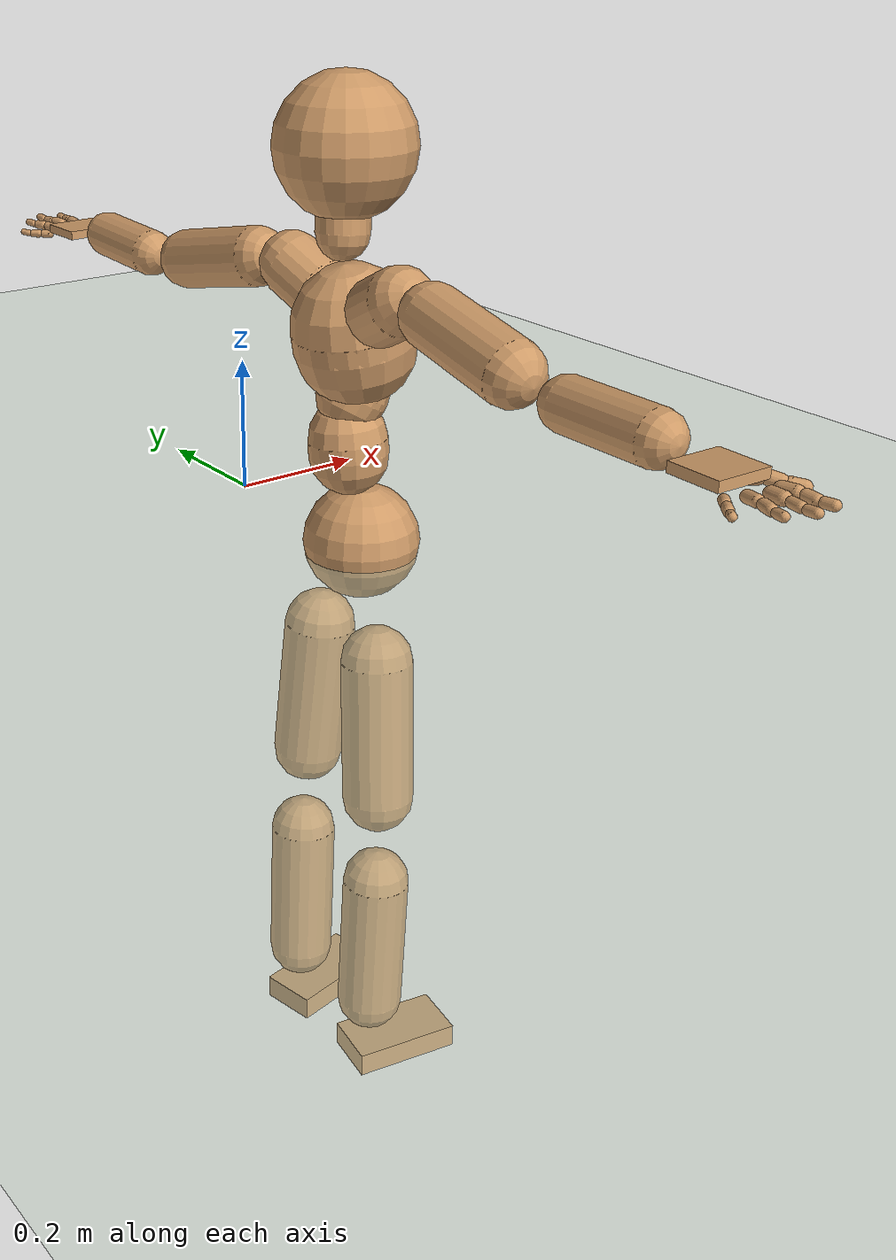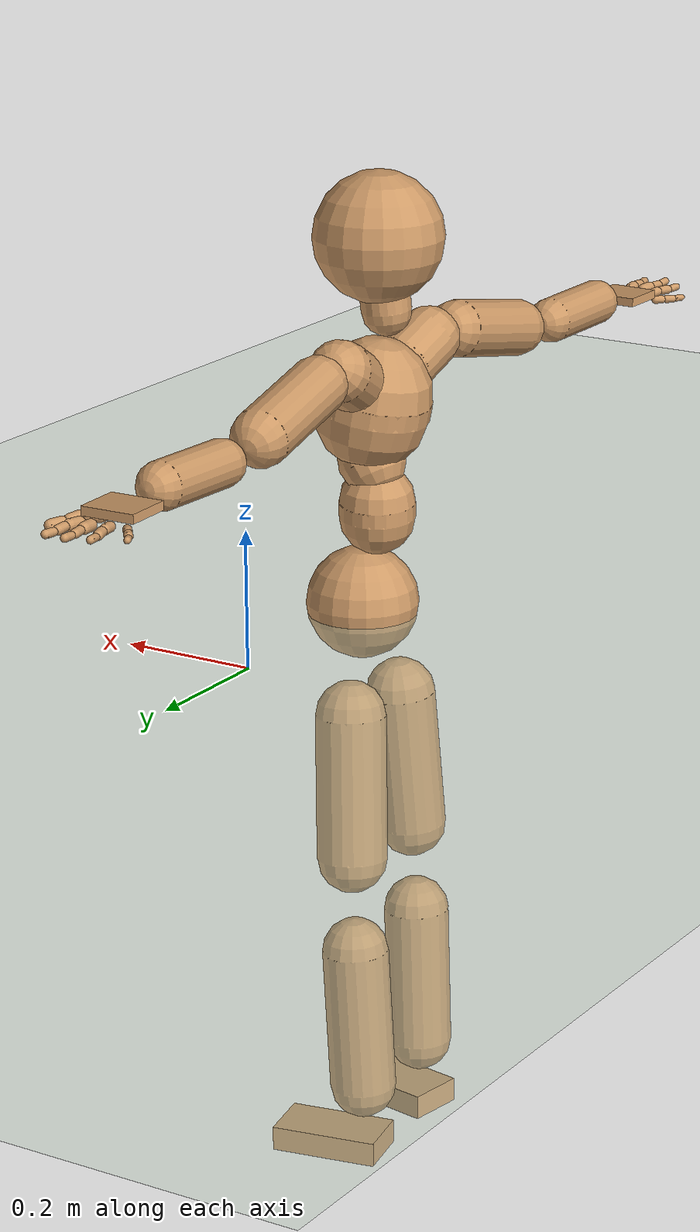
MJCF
<mujoco model="humanoid">
  <compiler coordinate="local" angle="radian"/>
  <default>
    <joint damping="0.0" armature="0.01" stiffness="0.0" limited="true"/>
    <geom conaffinity="1" condim="3" contype="7" margin="0.001" rgba="0.8 0.6 .4 1"/>
  </default>
  <asset>
    <texture type="skybox" builtin="gradient" rgb1=".4 .5 .6" rgb2="0 0 0" width="100" height="100"/>
    <texture builtin="flat" height="1278" mark="cross" markrgb="1 1 1" name="texgeom" random="0.01" rgb1="0.8 0.6 0.4" rgb2="0.8 0.6 0.4" type="cube" width="127"/>
    <texture builtin="checker" height="100" name="texplane" rgb1="0 0 0" rgb2="0.8 0.8 0.8" type="2d" width="100"/>
    <material name="MatPlane" reflectance="0.5" shininess="1" specular="1" texrepeat="60 60" texture="texplane"/>
    <material name="geom" texture="texgeom" texuniform="true"/>
  </asset>
  <worldbody>
    <light cutoff="100" diffuse="1 1 1" dir="-0 0 -1.3" directional="true" exponent="1" pos="0 0 1.3" specular=".1 .1 .1"/>
    <geom conaffinity="1" condim="3" name="floor" pos="0 0 0" rgba="0.8 0.9 0.8 1" size="100 100 .2" type="plane" material="MatPlane"/>
    <body name="Pelvis" pos="0.0003 -0.3 0.0145">
      <freejoint name="Pelvis"/>
      <geom type="sphere" contype="1" conaffinity="1" density="500" size="0.0826" pos="0.0000 0.0000 0.0000" name="Pelvis"/>
      <body name="L_Hip" pos="-0.0183 0.0637 -0.0798">
        <joint name="L_Hip_x" type="hinge" pos="0 0 0" axis="1 0 0" stiffness="800" damping="80" armature="0.02" range="-180.0000 180.0000"/>
        <joint name="L_Hip_y" type="hinge" pos="0 0 0" axis="0 1 0" stiffness="800" damping="80" armature="0.02" range="-180.0000 180.0000"/>
        <joint name="L_Hip_z" type="hinge" pos="0 0 0" axis="0 0 1" stiffness="800" damping="80" armature="0.02" range="-180.0000 180.0000"/>
        <geom type="capsule" contype="1" conaffinity="1" density="500" fromto="-0.0039 0.0054 -0.0715 -0.0154 0.0216 -0.2860" size="0.0517" name="L_Hip"/>
        <body name="L_Knee" pos="-0.0193 0.027 -0.3575">
          <joint name="L_Knee_x" type="hinge" pos="0 0 0" axis="1 0 0" stiffness="800" damping="80" armature="0.02" range="-180.0000 180.0000"/>
          <joint name="L_Knee_y" type="hinge" pos="0 0 0" axis="0 1 0" stiffness="800" damping="80" armature="0.02" range="-180.0000 180.0000"/>
          <joint name="L_Knee_z" type="hinge" pos="0 0 0" axis="0 0 1" stiffness="800" damping="80" armature="0.02" range="-180.0000 180.0000"/>
          <geom type="capsule" contype="1" conaffinity="1" density="500" fromto="-0.0032 -0.0015 -0.0728 -0.0130 -0.0061 -0.2914" size="0.0489" name="L_Knee"/>
          <body name="L_Ankle" pos="-0.0162 -0.0077 -0.3642">
            <joint name="L_Ankle_x" type="hinge" pos="0 0 0" axis="1 0 0" stiffness="800" damping="80" armature="0.02" range="-180.0000 180.0000"/>
            <joint name="L_Ankle_y" type="hinge" pos="0 0 0" axis="0 1 0" stiffness="800" damping="80" armature="0.02" range="-180.0000 180.0000"/>
            <joint name="L_Ankle_z" type="hinge" pos="0 0 0" axis="0 0 1" stiffness="800" damping="80" armature="0.02" range="-180.0000 180.0000"/>
            <geom type="box" contype="1" conaffinity="1" density="500" pos="0.0514 0.0099 -0.0209" size="0.0806 0.0431 0.0184" quat="0.9954 0.0000 0.0000 0.0954" name="L_Ankle"/>
            <body name="L_Toe" pos="0.1029 0.0199 -0.0417">
              <joint name="L_Toe_x" type="hinge" pos="0 0 0" axis="1 0 0" stiffness="500" damping="50" armature="0.02" range="-180.0000 180.0000"/>
              <joint name="L_Toe_y" type="hinge" pos="0 0 0" axis="0 1 0" stiffness="500" damping="50" armature="0.02" range="-180.0000 180.0000"/>
              <joint name="L_Toe_z" type="hinge" pos="0 0 0" axis="0 0 1" stiffness="500" damping="50" armature="0.02" range="-180.0000 180.0000"/>
              <geom type="box" contype="1" conaffinity="1" density="500" pos="0.0000 0.0000 0.0218" size="0.0009 0.0021 0.001" quat="0.9947 0.0000 0.0000 0.1027" name="L_Toe"/>
            </body>
          </body>
        </body>
      </body>
      <body name="R_Hip" pos="-0.0196 -0.0627 -0.0863">
        <joint name="R_Hip_x" type="hinge" pos="0 0 0" axis="1 0 0" stiffness="800" damping="80" armature="0.02" range="-180.0000 180.0000"/>
        <joint name="R_Hip_y" type="hinge" pos="0 0 0" axis="0 1 0" stiffness="800" damping="80" armature="0.02" range="-180.0000 180.0000"/>
        <joint name="R_Hip_z" type="hinge" pos="0 0 0" axis="0 0 1" stiffness="800" damping="80" armature="0.02" range="-180.0000 180.0000"/>
        <geom type="capsule" contype="1" conaffinity="1" density="500" fromto="-0.0028 -0.0061 -0.0706 -0.0111 -0.0244 -0.2824" size="0.0516" name="R_Hip"/>
        <body name="R_Knee" pos="-0.0139 -0.0305 -0.353">
          <joint name="R_Knee_x" type="hinge" pos="0 0 0" axis="1 0 0" stiffness="800" damping="80" armature="0.02" range="-180.0000 180.0000"/>
          <joint name="R_Knee_y" type="hinge" pos="0 0 0" axis="0 1 0" stiffness="800" damping="80" armature="0.02" range="-180.0000 180.0000"/>
          <joint name="R_Knee_z" type="hinge" pos="0 0 0" axis="0 0 1" stiffness="800" damping="80" armature="0.02" range="-180.0000 180.0000"/>
          <geom type="capsule" contype="1" conaffinity="1" density="500" fromto="-0.0024 0.0007 -0.0712 -0.0096 0.0028 -0.2849" size="0.0489" name="R_Knee"/>
          <body name="R_Ankle" pos="-0.012 0.0036 -0.3562">
            <joint name="R_Ankle_x" type="hinge" pos="0 0 0" axis="1 0 0" stiffness="800" damping="80" armature="0.02" range="-180.0000 180.0000"/>
            <joint name="R_Ankle_y" type="hinge" pos="0 0 0" axis="0 1 0" stiffness="800" damping="80" armature="0.02" range="-180.0000 180.0000"/>
            <joint name="R_Ankle_z" type="hinge" pos="0 0 0" axis="0 0 1" stiffness="800" damping="80" armature="0.02" range="-180.0000 180.0000"/>
            <geom type="box" contype="1" conaffinity="1" density="500" pos="0.0483 -0.0081 -0.0227" size="0.0806 0.0431 0.0184" quat="0.9965 0.0000 0.0000 -0.0831" name="R_Ankle"/>
            <body name="R_Toe" pos="0.0965 -0.0162 -0.0454">
              <joint name="R_Toe_x" type="hinge" pos="0 0 0" axis="1 0 0" stiffness="500" damping="50" armature="0.02" range="-180.0000 180.0000"/>
              <joint name="R_Toe_y" type="hinge" pos="0 0 0" axis="0 1 0" stiffness="500" damping="50" armature="0.02" range="-180.0000 180.0000"/>
              <joint name="R_Toe_z" type="hinge" pos="0 0 0" axis="0 0 1" stiffness="500" damping="50" armature="0.02" range="-180.0000 180.0000"/>
              <geom type="box" contype="1" conaffinity="1" density="500" pos="0.0000 0.0000 0.0236" size="0.0009 0.0021 0.001" quat="0.9974 0.0000 0.0000 -0.0715" name="R_Toe"/>
            </body>
          </body>
        </body>
      </body>
      <body name="Torso" pos="-0.022 -0.0047 0.0898">
        <joint name="Torso_x" type="hinge" pos="0 0 0" axis="1 0 0" stiffness="1000" damping="100" armature="0.02" range="-180.0000 180.0000"/>
        <joint name="Torso_y" type="hinge" pos="0 0 0" axis="0 1 0" stiffness="1000" damping="100" armature="0.02" range="-180.0000 180.0000"/>
        <joint name="Torso_z" type="hinge" pos="0 0 0" axis="0 0 1" stiffness="1000" damping="100" armature="0.02" range="-180.0000 180.0000"/>
        <geom type="capsule" contype="1" conaffinity="1" density="500" fromto="-0.0031 0.0047 0.0648 -0.0021 0.0031 0.0432" size="0.0556" name="Torso"/>
        <body name="Spine" pos="-0.0051 0.0079 0.108">
          <joint name="Spine_x" type="hinge" pos="0 0 0" axis="1 0 0" stiffness="1000" damping="100" armature="0.02" range="-180.0000 180.0000"/>
          <joint name="Spine_y" type="hinge" pos="0 0 0" axis="0 1 0" stiffness="1000" damping="100" armature="0.02" range="-180.0000 180.0000"/>
          <joint name="Spine_z" type="hinge" pos="0 0 0" axis="0 0 1" stiffness="1000" damping="100" armature="0.02" range="-180.0000 180.0000"/>
          <geom type="capsule" contype="1" conaffinity="1" density="500" fromto="0.0134 -0.0024 0.0235 0.0090 -0.0016 0.0157" size="0.049" name="Spine"/>
          <body name="Chest" pos="0.0224 -0.004 0.0392">
            <joint name="Chest_x" type="hinge" pos="0 0 0" axis="1 0 0" stiffness="1000" damping="100" armature="0.02" range="-180.0000 180.0000"/>
            <joint name="Chest_y" type="hinge" pos="0 0 0" axis="0 1 0" stiffness="1000" damping="100" armature="0.02" range="-180.0000 180.0000"/>
            <joint name="Chest_z" type="hinge" pos="0 0 0" axis="0 0 1" stiffness="1000" damping="100" armature="0.02" range="-180.0000 180.0000"/>
            <geom type="capsule" contype="1" conaffinity="1" density="500" fromto="-0.0148 -0.0015 0.0745 -0.0099 -0.0010 0.0497" size="0.0843" name="Chest"/>
            <body name="Neck" pos="-0.0359 -0.0053 0.1722">
              <joint name="Neck_x" type="hinge" pos="0 0 0" axis="1 0 0" stiffness="500" damping="50" armature="0.02" range="-180.0000 180.0000"/>
              <joint name="Neck_y" type="hinge" pos="0 0 0" axis="0 1 0" stiffness="500" damping="50" armature="0.02" range="-180.0000 180.0000"/>
              <joint name="Neck_z" type="hinge" pos="0 0 0" axis="0 0 1" stiffness="500" damping="50" armature="0.02" range="-180.0000 180.0000"/>
              <geom type="capsule" contype="1" conaffinity="1" density="500" fromto="0.0021 0.0017 0.0266 0.0085 0.0067 0.1063" size="0.0361" name="Neck"/>
              <body name="Head" pos="0.0106 0.0084 0.1329">
                <joint name="Head_x" type="hinge" pos="0 0 0" axis="1 0 0" stiffness="500" damping="50" armature="0.02" range="-180.0000 180.0000"/>
                <joint name="Head_y" type="hinge" pos="0 0 0" axis="0 1 0" stiffness="500" damping="50" armature="0.02" range="-180.0000 180.0000"/>
                <joint name="Head_z" type="hinge" pos="0 0 0" axis="0 0 1" stiffness="500" damping="50" armature="0.02" range="-180.0000 180.0000"/>
                <geom type="sphere" contype="1" conaffinity="1" density="500" size="0.0943" pos="0.0000 0.0000 0.0000" name="Head"/>
              </body>
            </body>
            <body name="L_Thorax" pos="-0.0165 0.047 0.1019">
              <joint name="L_Thorax_x" type="hinge" pos="0 0 0" axis="1 0 0" stiffness="500" damping="50" armature="0.02" range="-180.0000 180.0000"/>
              <joint name="L_Thorax_y" type="hinge" pos="0 0 0" axis="0 1 0" stiffness="500" damping="50" armature="0.02" range="-180.0000 180.0000"/>
              <joint name="L_Thorax_z" type="hinge" pos="0 0 0" axis="0 0 1" stiffness="500" damping="50" armature="0.02" range="-180.0000 180.0000"/>
              <geom type="capsule" contype="1" conaffinity="1" density="500" fromto="-0.0037 0.0168 0.0086 -0.0146 0.0671 0.0343" size="0.0452" name="L_Thorax"/>
              <body name="L_Shoulder" pos="-0.0183 0.0838 0.0429">
                <joint name="L_Shoulder_x" type="hinge" pos="0 0 0" axis="1 0 0" stiffness="500" damping="50" armature="0.02" range="-180.0000 180.0000"/>
                <joint name="L_Shoulder_y" type="hinge" pos="0 0 0" axis="0 1 0" stiffness="500" damping="50" armature="0.02" range="-180.0000 180.0000"/>
                <joint name="L_Shoulder_z" type="hinge" pos="0 0 0" axis="0 0 1" stiffness="500" damping="50" armature="0.02" range="-180.0000 180.0000"/>
                <geom type="capsule" contype="1" conaffinity="1" density="500" fromto="-0.0047 0.0545 -0.0110 -0.0187 0.2179 -0.0441" size="0.0419" name="L_Shoulder"/>
                <body name="L_Elbow" pos="-0.0234 0.2723 -0.0551">
                  <joint name="L_Elbow_x" type="hinge" pos="0 0 0" axis="1 0 0" stiffness="500" damping="50" armature="0.02" range="-720.0000 720.0000"/>
                  <joint name="L_Elbow_y" type="hinge" pos="0 0 0" axis="0 1 0" stiffness="500" damping="50" armature="0.02" range="-720.0000 720.0000"/>
                  <joint name="L_Elbow_z" type="hinge" pos="0 0 0" axis="0 0 1" stiffness="500" damping="50" armature="0.02" range="-720.0000 720.0000"/>
                  <geom type="capsule" contype="1" conaffinity="1" density="500" fromto="0.0004 0.0452 0.0012 0.0016 0.1808 0.0047" size="0.0337" name="L_Elbow"/>
                  <body name="L_Wrist" pos="0.0021 0.2259 0.0059">
                    <joint name="L_Wrist_x" type="hinge" pos="0 0 0" axis="1 0 0" stiffness="300" damping="30" armature="0.02" range="-180.0000 180.0000"/>
                    <joint name="L_Wrist_y" type="hinge" pos="0 0 0" axis="0 1 0" stiffness="300" damping="30" armature="0.02" range="-180.0000 180.0000"/>
                    <joint name="L_Wrist_z" type="hinge" pos="0 0 0" axis="0 0 1" stiffness="300" damping="30" armature="0.02" range="-180.0000 180.0000"/>
                    <geom type="box" contype="1" conaffinity="1" density="500" pos="-0.0016 0.0416 -0.0082" size="0.0351 0.0394 0.0064" quat="0.7207 0.0000 0.0000 -0.6932" name="L_Wrist"/>
                    <body name="L_Index1" pos="0.0192 0.0975 -0.0148">
                      <joint name="L_Index1_x" type="hinge" pos="0 0 0" axis="1 0 0" stiffness="100" damping="10" armature="0.02" range="-180.0000 180.0000"/>
                      <joint name="L_Index1_y" type="hinge" pos="0 0 0" axis="0 1 0" stiffness="100" damping="10" armature="0.02" range="-180.0000 180.0000"/>
                      <joint name="L_Index1_z" type="hinge" pos="0 0 0" axis="0 0 1" stiffness="100" damping="10" armature="0.02" range="-180.0000 180.0000"/>
                      <geom type="capsule" contype="1" conaffinity="1" density="500" fromto="0.0005 0.0060 0.0005 0.0021 0.0242 0.0019" size="0.0082" name="L_Index1"/>
                      <body name="L_Index2" pos="0.0026 0.0302 0.0024">
                        <joint name="L_Index2_x" type="hinge" pos="0 0 0" axis="1 0 0" stiffness="100" damping="10" armature="0.02" range="-180.0000 180.0000"/>
                        <joint name="L_Index2_y" type="hinge" pos="0 0 0" axis="0 1 0" stiffness="100" damping="10" armature="0.02" range="-180.0000 180.0000"/>
                        <joint name="L_Index2_z" type="hinge" pos="0 0 0" axis="0 0 1" stiffness="100" damping="10" armature="0.02" range="-180.0000 180.0000"/>
                        <geom type="capsule" contype="1" conaffinity="1" density="500" fromto="0.0001 0.0043 -0.0003 0.0003 0.0172 -0.0011" size="0.0069" name="L_Index2"/>
                        <body name="L_Index3" pos="0.0004 0.0215 -0.0014">
                          <joint name="L_Index3_x" type="hinge" pos="0 0 0" axis="1 0 0" stiffness="100" damping="10" armature="0.02" range="-180.0000 180.0000"/>
                          <joint name="L_Index3_y" type="hinge" pos="0 0 0" axis="0 1 0" stiffness="100" damping="10" armature="0.02" range="-180.0000 180.0000"/>
                          <joint name="L_Index3_z" type="hinge" pos="0 0 0" axis="0 0 1" stiffness="100" damping="10" armature="0.02" range="-180.0000 180.0000"/>
                          <geom type="capsule" contype="1" conaffinity="1" density="500" fromto="0.0005 0.0047 0.0001 0.0019 0.0188 0.0005" size="0.0059" name="L_Index3"/>
                        </body>
                      </body>
                    </body>
                    <body name="L_Middle1" pos="-0.0015 0.104 -0.0127">
                      <joint name="L_Middle1_x" type="hinge" pos="0 0 0" axis="1 0 0" stiffness="100" damping="10" armature="0.02" range="-180.0000 180.0000"/>
                      <joint name="L_Middle1_y" type="hinge" pos="0 0 0" axis="0 1 0" stiffness="100" damping="10" armature="0.02" range="-180.0000 180.0000"/>
                      <joint name="L_Middle1_z" type="hinge" pos="0 0 0" axis="0 0 1" stiffness="100" damping="10" armature="0.02" range="-180.0000 180.0000"/>
                      <geom type="capsule" contype="1" conaffinity="1" density="500" fromto="-0.0008 0.0057 0.0002 -0.0030 0.0229 0.0009" size="0.0083" name="L_Middle1"/>
                      <body name="L_Middle2" pos="-0.0038 0.0287 0.0011">
                        <joint name="L_Middle2_x" type="hinge" pos="0 0 0" axis="1 0 0" stiffness="100" damping="10" armature="0.02" range="-180.0000 180.0000"/>
                        <joint name="L_Middle2_y" type="hinge" pos="0 0 0" axis="0 1 0" stiffness="100" damping="10" armature="0.02" range="-180.0000 180.0000"/>
                        <joint name="L_Middle2_z" type="hinge" pos="0 0 0" axis="0 0 1" stiffness="100" damping="10" armature="0.02" range="-180.0000 180.0000"/>
                        <geom type="capsule" contype="1" conaffinity="1" density="500" fromto="-0.0007 0.0045 -0.0001 -0.0028 0.0179 -0.0004" size="0.0063" name="L_Middle2"/>
                        <body name="L_Middle3" pos="-0.0036 0.0224 -0.0005">
                          <joint name="L_Middle3_x" type="hinge" pos="0 0 0" axis="1 0 0" stiffness="100" damping="10" armature="0.02" range="-180.0000 180.0000"/>
                          <joint name="L_Middle3_y" type="hinge" pos="0 0 0" axis="0 1 0" stiffness="100" damping="10" armature="0.02" range="-180.0000 180.0000"/>
                          <joint name="L_Middle3_z" type="hinge" pos="0 0 0" axis="0 0 1" stiffness="100" damping="10" armature="0.02" range="-180.0000 180.0000"/>
                          <geom type="capsule" contype="1" conaffinity="1" density="500" fromto="-0.0003 0.0049 0.0003 -0.0012 0.0195 0.0012" size="0.0056" name="L_Middle3"/>
                        </body>
                      </body>
                    </body>
                    <body name="L_Pinky1" pos="-0.0364 0.0803 -0.0192">
                      <joint name="L_Pinky1_x" type="hinge" pos="0 0 0" axis="1 0 0" stiffness="100" damping="10" armature="0.02" range="-180.0000 180.0000"/>
                      <joint name="L_Pinky1_y" type="hinge" pos="0 0 0" axis="0 1 0" stiffness="100" damping="10" armature="0.02" range="-180.0000 180.0000"/>
                      <joint name="L_Pinky1_z" type="hinge" pos="0 0 0" axis="0 0 1" stiffness="100" damping="10" armature="0.02" range="-180.0000 180.0000"/>
                      <geom type="capsule" contype="1" conaffinity="1" density="500" fromto="-0.0023 0.0028 -0.0000 -0.0091 0.0112 -0.0002" size="0.006" name="L_Pinky1"/>
                      <body name="L_Pinky2" pos="-0.0114 0.014 -0.0002">
                        <joint name="L_Pinky2_x" type="hinge" pos="0 0 0" axis="1 0 0" stiffness="100" damping="10" armature="0.02" range="-180.0000 180.0000"/>
                        <joint name="L_Pinky2_y" type="hinge" pos="0 0 0" axis="0 1 0" stiffness="100" damping="10" armature="0.02" range="-180.0000 180.0000"/>
                        <joint name="L_Pinky2_z" type="hinge" pos="0 0 0" axis="0 0 1" stiffness="100" damping="10" armature="0.02" range="-180.0000 180.0000"/>
                        <geom type="capsule" contype="1" conaffinity="1" density="500" fromto="-0.0022 0.0028 -0.0001 -0.0090 0.0114 -0.0005" size="0.0059" name="L_Pinky2"/>
                        <body name="L_Pinky3" pos="-0.0112 0.0142 -0.0007">
                          <joint name="L_Pinky3_x" type="hinge" pos="0 0 0" axis="1 0 0" stiffness="100" damping="10" armature="0.02" range="-180.0000 180.0000"/>
                          <joint name="L_Pinky3_y" type="hinge" pos="0 0 0" axis="0 1 0" stiffness="100" damping="10" armature="0.02" range="-180.0000 180.0000"/>
                          <joint name="L_Pinky3_z" type="hinge" pos="0 0 0" axis="0 0 1" stiffness="100" damping="10" armature="0.02" range="-180.0000 180.0000"/>
                          <geom type="capsule" contype="1" conaffinity="1" density="500" fromto="-0.0018 0.0032 0.0003 -0.0074 0.0130 0.0011" size="0.0047" name="L_Pinky3"/>
                        </body>
                      </body>
                    </body>
                    <body name="L_Ring1" pos="-0.022 0.0926 -0.0148">
                      <joint name="L_Ring1_x" type="hinge" pos="0 0 0" axis="1 0 0" stiffness="100" damping="10" armature="0.02" range="-180.0000 180.0000"/>
                      <joint name="L_Ring1_y" type="hinge" pos="0 0 0" axis="0 1 0" stiffness="100" damping="10" armature="0.02" range="-180.0000 180.0000"/>
                      <joint name="L_Ring1_z" type="hinge" pos="0 0 0" axis="0 0 1" stiffness="100" damping="10" armature="0.02" range="-180.0000 180.0000"/>
                      <geom type="capsule" contype="1" conaffinity="1" density="500" fromto="-0.0010 0.0052 0.0003 -0.0041 0.0207 0.0012" size="0.0072" name="L_Ring1"/>
                      <body name="L_Ring2" pos="-0.0052 0.0259 0.0015">
                        <joint name="L_Ring2_x" type="hinge" pos="0 0 0" axis="1 0 0" stiffness="100" damping="10" armature="0.02" range="-180.0000 180.0000"/>
                        <joint name="L_Ring2_y" type="hinge" pos="0 0 0" axis="0 1 0" stiffness="100" damping="10" armature="0.02" range="-180.0000 180.0000"/>
                        <joint name="L_Ring2_z" type="hinge" pos="0 0 0" axis="0 0 1" stiffness="100" damping="10" armature="0.02" range="-180.0000 180.0000"/>
                        <geom type="capsule" contype="1" conaffinity="1" density="500" fromto="-0.0014 0.0043 -0.0002 -0.0054 0.0171 -0.0006" size="0.0068" name="L_Ring2"/>
                        <body name="L_Ring3" pos="-0.0068 0.0214 -0.0008">
                          <joint name="L_Ring3_x" type="hinge" pos="0 0 0" axis="1 0 0" stiffness="100" damping="10" armature="0.02" range="-180.0000 180.0000"/>
                          <joint name="L_Ring3_y" type="hinge" pos="0 0 0" axis="0 1 0" stiffness="100" damping="10" armature="0.02" range="-180.0000 180.0000"/>
                          <joint name="L_Ring3_z" type="hinge" pos="0 0 0" axis="0 0 1" stiffness="100" damping="10" armature="0.02" range="-180.0000 180.0000"/>
                          <geom type="capsule" contype="1" conaffinity="1" density="500" fromto="-0.0010 0.0047 0.0002 -0.0038 0.0187 0.0010" size="0.0054" name="L_Ring3"/>
                        </body>
                      </body>
                    </body>
                    <body name="L_Thumb1" pos="0.0244 0.0415 -0.0207">
                      <joint name="L_Thumb1_x" type="hinge" pos="0 0 0" axis="1 0 0" stiffness="100" damping="10" armature="0.02" range="-180.0000 180.0000"/>
                      <joint name="L_Thumb1_y" type="hinge" pos="0 0 0" axis="0 1 0" stiffness="100" damping="10" armature="0.02" range="-180.0000 180.0000"/>
                      <joint name="L_Thumb1_z" type="hinge" pos="0 0 0" axis="0 0 1" stiffness="100" damping="10" armature="0.02" range="-180.0000 180.0000"/>
                      <geom type="capsule" contype="1" conaffinity="1" density="500" fromto="0.0044 0.0033 0.0000 0.0176 0.0133 0.0002" size="0.0106" name="L_Thumb1"/>
                      <body name="L_Thumb2" pos="0.022 0.0166 0.0002">
                        <joint name="L_Thumb2_x" type="hinge" pos="0 0 0" axis="1 0 0" stiffness="100" damping="10" armature="0.02" range="-180.0000 180.0000"/>
                        <joint name="L_Thumb2_y" type="hinge" pos="0 0 0" axis="0 1 0" stiffness="100" damping="10" armature="0.02" range="-180.0000 180.0000"/>
                        <joint name="L_Thumb2_z" type="hinge" pos="0 0 0" axis="0 0 1" stiffness="100" damping="10" armature="0.02" range="-180.0000 180.0000"/>
                        <geom type="capsule" contype="1" conaffinity="1" density="500" fromto="0.0027 0.0039 -0.0011 0.0108 0.0155 -0.0044" size="0.0085" name="L_Thumb2"/>
                        <body name="L_Thumb3" pos="0.0135 0.0194 -0.0055">
                          <joint name="L_Thumb3_x" type="hinge" pos="0 0 0" axis="1 0 0" stiffness="100" damping="10" armature="0.02" range="-180.0000 180.0000"/>
                          <joint name="L_Thumb3_y" type="hinge" pos="0 0 0" axis="0 1 0" stiffness="100" damping="10" armature="0.02" range="-180.0000 180.0000"/>
                          <joint name="L_Thumb3_z" type="hinge" pos="0 0 0" axis="0 0 1" stiffness="100" damping="10" armature="0.02" range="-180.0000 180.0000"/>
                          <geom type="capsule" contype="1" conaffinity="1" density="500" fromto="0.0031 0.0043 -0.0007 0.0124 0.0171 -0.0028" size="0.0081" name="L_Thumb3"/>
                        </body>
                      </body>
                    </body>
                  </body>
                </body>
              </body>
            </body>
            <body name="R_Thorax" pos="-0.0214 -0.0493 0.0986">
              <joint name="R_Thorax_x" type="hinge" pos="0 0 0" axis="1 0 0" stiffness="500" damping="50" armature="0.02" range="-180.0000 180.0000"/>
              <joint name="R_Thorax_y" type="hinge" pos="0 0 0" axis="0 1 0" stiffness="500" damping="50" armature="0.02" range="-180.0000 180.0000"/>
              <joint name="R_Thorax_z" type="hinge" pos="0 0 0" axis="0 0 1" stiffness="500" damping="50" armature="0.02" range="-180.0000 180.0000"/>
              <geom type="capsule" contype="1" conaffinity="1" density="500" fromto="-0.0026 -0.0180 0.0089 -0.0103 -0.0722 0.0356" size="0.0462" name="R_Thorax"/>
              <body name="R_Shoulder" pos="-0.0129 -0.0902 0.0446">
                <joint name="R_Shoulder_x" type="hinge" pos="0 0 0" axis="1 0 0" stiffness="500" damping="50" armature="0.02" range="-180.0000 180.0000"/>
                <joint name="R_Shoulder_y" type="hinge" pos="0 0 0" axis="0 1 0" stiffness="500" damping="50" armature="0.02" range="-180.0000 180.0000"/>
                <joint name="R_Shoulder_z" type="hinge" pos="0 0 0" axis="0 0 1" stiffness="500" damping="50" armature="0.02" range="-180.0000 180.0000"/>
                <geom type="capsule" contype="1" conaffinity="1" density="500" fromto="-0.0034 -0.0525 -0.0100 -0.0137 -0.2101 -0.0401" size="0.0423" name="R_Shoulder"/>
                <body name="R_Elbow" pos="-0.0171 -0.2626 -0.0501">
                  <joint name="R_Elbow_x" type="hinge" pos="0 0 0" axis="1 0 0" stiffness="500" damping="50" armature="0.02" range="-720.0000 720.0000"/>
                  <joint name="R_Elbow_y" type="hinge" pos="0 0 0" axis="0 1 0" stiffness="500" damping="50" armature="0.02" range="-720.0000 720.0000"/>
                  <joint name="R_Elbow_z" type="hinge" pos="0 0 0" axis="0 0 1" stiffness="500" damping="50" armature="0.02" range="-720.0000 720.0000"/>
                  <geom type="capsule" contype="1" conaffinity="1" density="500" fromto="-0.0012 -0.0454 0.0004 -0.0046 -0.1817 0.0014" size="0.0339" name="R_Elbow"/>
                  <body name="R_Wrist" pos="-0.0058 -0.2271 0.0018">
                    <joint name="R_Wrist_x" type="hinge" pos="0 0 0" axis="1 0 0" stiffness="300" damping="30" armature="0.02" range="-180.0000 180.0000"/>
                    <joint name="R_Wrist_y" type="hinge" pos="0 0 0" axis="0 1 0" stiffness="300" damping="30" armature="0.02" range="-180.0000 180.0000"/>
                    <joint name="R_Wrist_z" type="hinge" pos="0 0 0" axis="0 0 1" stiffness="300" damping="30" armature="0.02" range="-180.0000 180.0000"/>
                    <geom type="box" contype="1" conaffinity="1" density="500" pos="-0.0010 -0.0410 -0.0079" size="0.0351 0.0369 0.0066" quat="0.7161 0.0000 0.0000 0.6980" name="R_Wrist"/>
                    <body name="R_Index1" pos="0.0203 -0.0963 -0.0141">
                      <joint name="R_Index1_x" type="hinge" pos="0 0 0" axis="1 0 0" stiffness="100" damping="10" armature="0.02" range="-180.0000 180.0000"/>
                      <joint name="R_Index1_y" type="hinge" pos="0 0 0" axis="0 1 0" stiffness="100" damping="10" armature="0.02" range="-180.0000 180.0000"/>
                      <joint name="R_Index1_z" type="hinge" pos="0 0 0" axis="0 0 1" stiffness="100" damping="10" armature="0.02" range="-180.0000 180.0000"/>
                      <geom type="capsule" contype="1" conaffinity="1" density="500" fromto="0.0005 -0.0060 0.0005 0.0021 -0.0242 0.0019" size="0.0082" name="R_Index1"/>
                      <body name="R_Index2" pos="0.0026 -0.0302 0.0024">
                        <joint name="R_Index2_x" type="hinge" pos="0 0 0" axis="1 0 0" stiffness="100" damping="10" armature="0.02" range="-180.0000 180.0000"/>
                        <joint name="R_Index2_y" type="hinge" pos="0 0 0" axis="0 1 0" stiffness="100" damping="10" armature="0.02" range="-180.0000 180.0000"/>
                        <joint name="R_Index2_z" type="hinge" pos="0 0 0" axis="0 0 1" stiffness="100" damping="10" armature="0.02" range="-180.0000 180.0000"/>
                        <geom type="capsule" contype="1" conaffinity="1" density="500" fromto="0.0001 -0.0043 -0.0003 0.0003 -0.0172 -0.0011" size="0.0069" name="R_Index2"/>
                        <body name="R_Index3" pos="0.0004 -0.0215 -0.0014">
                          <joint name="R_Index3_x" type="hinge" pos="0 0 0" axis="1 0 0" stiffness="100" damping="10" armature="0.02" range="-180.0000 180.0000"/>
                          <joint name="R_Index3_y" type="hinge" pos="0 0 0" axis="0 1 0" stiffness="100" damping="10" armature="0.02" range="-180.0000 180.0000"/>
                          <joint name="R_Index3_z" type="hinge" pos="0 0 0" axis="0 0 1" stiffness="100" damping="10" armature="0.02" range="-180.0000 180.0000"/>
                          <geom type="capsule" contype="1" conaffinity="1" density="500" fromto="0.0005 -0.0039 0.0001 0.0019 -0.0156 0.0005" size="0.0062" name="R_Index3"/>
                        </body>
                      </body>
                    </body>
                    <body name="R_Middle1" pos="-0.0004 -0.1029 -0.012">
                      <joint name="R_Middle1_x" type="hinge" pos="0 0 0" axis="1 0 0" stiffness="100" damping="10" armature="0.02" range="-180.0000 180.0000"/>
                      <joint name="R_Middle1_y" type="hinge" pos="0 0 0" axis="0 1 0" stiffness="100" damping="10" armature="0.02" range="-180.0000 180.0000"/>
                      <joint name="R_Middle1_z" type="hinge" pos="0 0 0" axis="0 0 1" stiffness="100" damping="10" armature="0.02" range="-180.0000 180.0000"/>
                      <geom type="capsule" contype="1" conaffinity="1" density="500" fromto="-0.0008 -0.0057 0.0002 -0.0030 -0.0229 0.0009" size="0.0083" name="R_Middle1"/>
                      <body name="R_Middle2" pos="-0.0038 -0.0287 0.0011">
                        <joint name="R_Middle2_x" type="hinge" pos="0 0 0" axis="1 0 0" stiffness="100" damping="10" armature="0.02" range="-180.0000 180.0000"/>
                        <joint name="R_Middle2_y" type="hinge" pos="0 0 0" axis="0 1 0" stiffness="100" damping="10" armature="0.02" range="-180.0000 180.0000"/>
                        <joint name="R_Middle2_z" type="hinge" pos="0 0 0" axis="0 0 1" stiffness="100" damping="10" armature="0.02" range="-180.0000 180.0000"/>
                        <geom type="capsule" contype="1" conaffinity="1" density="500" fromto="-0.0007 -0.0045 -0.0001 -0.0028 -0.0179 -0.0004" size="0.0063" name="R_Middle2"/>
                        <body name="R_Middle3" pos="-0.0036 -0.0224 -0.0005">
                          <joint name="R_Middle3_x" type="hinge" pos="0 0 0" axis="1 0 0" stiffness="100" damping="10" armature="0.02" range="-180.0000 180.0000"/>
                          <joint name="R_Middle3_y" type="hinge" pos="0 0 0" axis="0 1 0" stiffness="100" damping="10" armature="0.02" range="-180.0000 180.0000"/>
                          <joint name="R_Middle3_z" type="hinge" pos="0 0 0" axis="0 0 1" stiffness="100" damping="10" armature="0.02" range="-180.0000 180.0000"/>
                          <geom type="capsule" contype="1" conaffinity="1" density="500" fromto="-0.0003 -0.0041 0.0003 -0.0012 -0.0163 0.0012" size="0.0059" name="R_Middle3"/>
                        </body>
                      </body>
                    </body>
                    <body name="R_Pinky1" pos="-0.0352 -0.0792 -0.0185">
                      <joint name="R_Pinky1_x" type="hinge" pos="0 0 0" axis="1 0 0" stiffness="100" damping="10" armature="0.02" range="-180.0000 180.0000"/>
                      <joint name="R_Pinky1_y" type="hinge" pos="0 0 0" axis="0 1 0" stiffness="100" damping="10" armature="0.02" range="-180.0000 180.0000"/>
                      <joint name="R_Pinky1_z" type="hinge" pos="0 0 0" axis="0 0 1" stiffness="100" damping="10" armature="0.02" range="-180.0000 180.0000"/>
                      <geom type="capsule" contype="1" conaffinity="1" density="500" fromto="-0.0023 -0.0028 -0.0000 -0.0091 -0.0112 -0.0002" size="0.006" name="R_Pinky1"/>
                      <body name="R_Pinky2" pos="-0.0114 -0.014 -0.0002">
                        <joint name="R_Pinky2_x" type="hinge" pos="0 0 0" axis="1 0 0" stiffness="100" damping="10" armature="0.02" range="-180.0000 180.0000"/>
                        <joint name="R_Pinky2_y" type="hinge" pos="0 0 0" axis="0 1 0" stiffness="100" damping="10" armature="0.02" range="-180.0000 180.0000"/>
                        <joint name="R_Pinky2_z" type="hinge" pos="0 0 0" axis="0 0 1" stiffness="100" damping="10" armature="0.02" range="-180.0000 180.0000"/>
                        <geom type="capsule" contype="1" conaffinity="1" density="500" fromto="-0.0022 -0.0028 -0.0001 -0.0090 -0.0114 -0.0005" size="0.0059" name="R_Pinky2"/>
                        <body name="R_Pinky3" pos="-0.0112 -0.0142 -0.0007">
                          <joint name="R_Pinky3_x" type="hinge" pos="0 0 0" axis="1 0 0" stiffness="100" damping="10" armature="0.02" range="-180.0000 180.0000"/>
                          <joint name="R_Pinky3_y" type="hinge" pos="0 0 0" axis="0 1 0" stiffness="100" damping="10" armature="0.02" range="-180.0000 180.0000"/>
                          <joint name="R_Pinky3_z" type="hinge" pos="0 0 0" axis="0 0 1" stiffness="100" damping="10" armature="0.02" range="-180.0000 180.0000"/>
                          <geom type="capsule" contype="1" conaffinity="1" density="500" fromto="-0.0018 -0.0024 0.0003 -0.0074 -0.0098 0.0011" size="0.0049" name="R_Pinky3"/>
                        </body>
                      </body>
                    </body>
                    <body name="R_Ring1" pos="-0.0208 -0.0915 -0.0142">
                      <joint name="R_Ring1_x" type="hinge" pos="0 0 0" axis="1 0 0" stiffness="100" damping="10" armature="0.02" range="-180.0000 180.0000"/>
                      <joint name="R_Ring1_y" type="hinge" pos="0 0 0" axis="0 1 0" stiffness="100" damping="10" armature="0.02" range="-180.0000 180.0000"/>
                      <joint name="R_Ring1_z" type="hinge" pos="0 0 0" axis="0 0 1" stiffness="100" damping="10" armature="0.02" range="-180.0000 180.0000"/>
                      <geom type="capsule" contype="1" conaffinity="1" density="500" fromto="-0.0010 -0.0052 0.0003 -0.0041 -0.0207 0.0012" size="0.0072" name="R_Ring1"/>
                      <body name="R_Ring2" pos="-0.0052 -0.0259 0.0015">
                        <joint name="R_Ring2_x" type="hinge" pos="0 0 0" axis="1 0 0" stiffness="100" damping="10" armature="0.02" range="-180.0000 180.0000"/>
                        <joint name="R_Ring2_y" type="hinge" pos="0 0 0" axis="0 1 0" stiffness="100" damping="10" armature="0.02" range="-180.0000 180.0000"/>
                        <joint name="R_Ring2_z" type="hinge" pos="0 0 0" axis="0 0 1" stiffness="100" damping="10" armature="0.02" range="-180.0000 180.0000"/>
                        <geom type="capsule" contype="1" conaffinity="1" density="500" fromto="-0.0014 -0.0043 -0.0002 -0.0054 -0.0171 -0.0006" size="0.0068" name="R_Ring2"/>
                        <body name="R_Ring3" pos="-0.0068 -0.0214 -0.0008">
                          <joint name="R_Ring3_x" type="hinge" pos="0 0 0" axis="1 0 0" stiffness="100" damping="10" armature="0.02" range="-180.0000 180.0000"/>
                          <joint name="R_Ring3_y" type="hinge" pos="0 0 0" axis="0 1 0" stiffness="100" damping="10" armature="0.02" range="-180.0000 180.0000"/>
                          <joint name="R_Ring3_z" type="hinge" pos="0 0 0" axis="0 0 1" stiffness="100" damping="10" armature="0.02" range="-180.0000 180.0000"/>
                          <geom type="capsule" contype="1" conaffinity="1" density="500" fromto="-0.0010 -0.0039 0.0002 -0.0038 -0.0155 0.0010" size="0.0056" name="R_Ring3"/>
                        </body>
                      </body>
                    </body>
                    <body name="R_Thumb1" pos="0.0256 -0.0404 -0.02">
                      <joint name="R_Thumb1_x" type="hinge" pos="0 0 0" axis="1 0 0" stiffness="100" damping="10" armature="0.02" range="-180.0000 180.0000"/>
                      <joint name="R_Thumb1_y" type="hinge" pos="0 0 0" axis="0 1 0" stiffness="100" damping="10" armature="0.02" range="-180.0000 180.0000"/>
                      <joint name="R_Thumb1_z" type="hinge" pos="0 0 0" axis="0 0 1" stiffness="100" damping="10" armature="0.02" range="-180.0000 180.0000"/>
                      <geom type="capsule" contype="1" conaffinity="1" density="500" fromto="0.0044 -0.0033 0.0000 0.0176 -0.0133 0.0002" size="0.0106" name="R_Thumb1"/>
                      <body name="R_Thumb2" pos="0.022 -0.0166 0.0002">
                        <joint name="R_Thumb2_x" type="hinge" pos="0 0 0" axis="1 0 0" stiffness="100" damping="10" armature="0.02" range="-180.0000 180.0000"/>
                        <joint name="R_Thumb2_y" type="hinge" pos="0 0 0" axis="0 1 0" stiffness="100" damping="10" armature="0.02" range="-180.0000 180.0000"/>
                        <joint name="R_Thumb2_z" type="hinge" pos="0 0 0" axis="0 0 1" stiffness="100" damping="10" armature="0.02" range="-180.0000 180.0000"/>
                        <geom type="capsule" contype="1" conaffinity="1" density="500" fromto="0.0027 -0.0039 -0.0011 0.0108 -0.0155 -0.0044" size="0.0085" name="R_Thumb2"/>
                        <body name="R_Thumb3" pos="0.0135 -0.0194 -0.0055">
                          <joint name="R_Thumb3_x" type="hinge" pos="0 0 0" axis="1 0 0" stiffness="100" damping="10" armature="0.02" range="-180.0000 180.0000"/>
                          <joint name="R_Thumb3_y" type="hinge" pos="0 0 0" axis="0 1 0" stiffness="100" damping="10" armature="0.02" range="-180.0000 180.0000"/>
                          <joint name="R_Thumb3_z" type="hinge" pos="0 0 0" axis="0 0 1" stiffness="100" damping="10" armature="0.02" range="-180.0000 180.0000"/>
                          <geom type="capsule" contype="1" conaffinity="1" density="500" fromto="0.0031 -0.0035 -0.0007 0.0124 -0.0139 -0.0028" size="0.0083" name="R_Thumb3"/>
                        </body>
                      </body>
                    </body>
                  </body>
                </body>
              </body>
            </body>
          </body>
        </body>
      </body>
    </body>
  </worldbody>
  <actuator>
    <motor name="L_Hip_x" joint="L_Hip_x" gear="500"/>
    <motor name="L_Hip_y" joint="L_Hip_y" gear="500"/>
    <motor name="L_Hip_z" joint="L_Hip_z" gear="500"/>
    <motor name="L_Knee_x" joint="L_Knee_x" gear="500"/>
    <motor name="L_Knee_y" joint="L_Knee_y" gear="500"/>
    <motor name="L_Knee_z" joint="L_Knee_z" gear="500"/>
    <motor name="L_Ankle_x" joint="L_Ankle_x" gear="500"/>
    <motor name="L_Ankle_y" joint="L_Ankle_y" gear="500"/>
    <motor name="L_Ankle_z" joint="L_Ankle_z" gear="500"/>
    <motor name="L_Toe_x" joint="L_Toe_x" gear="500"/>
    <motor name="L_Toe_y" joint="L_Toe_y" gear="500"/>
    <motor name="L_Toe_z" joint="L_Toe_z" gear="500"/>
    <motor name="R_Hip_x" joint="R_Hip_x" gear="500"/>
    <motor name="R_Hip_y" joint="R_Hip_y" gear="500"/>
    <motor name="R_Hip_z" joint="R_Hip_z" gear="500"/>
    <motor name="R_Knee_x" joint="R_Knee_x" gear="500"/>
    <motor name="R_Knee_y" joint="R_Knee_y" gear="500"/>
    <motor name="R_Knee_z" joint="R_Knee_z" gear="500"/>
    <motor name="R_Ankle_x" joint="R_Ankle_x" gear="500"/>
    <motor name="R_Ankle_y" joint="R_Ankle_y" gear="500"/>
    <motor name="R_Ankle_z" joint="R_Ankle_z" gear="500"/>
    <motor name="R_Toe_x" joint="R_Toe_x" gear="500"/>
    <motor name="R_Toe_y" joint="R_Toe_y" gear="500"/>
    <motor name="R_Toe_z" joint="R_Toe_z" gear="500"/>
    <motor name="Torso_x" joint="Torso_x" gear="500"/>
    <motor name="Torso_y" joint="Torso_y" gear="500"/>
    <motor name="Torso_z" joint="Torso_z" gear="500"/>
    <motor name="Spine_x" joint="Spine_x" gear="500"/>
    <motor name="Spine_y" joint="Spine_y" gear="500"/>
    <motor name="Spine_z" joint="Spine_z" gear="500"/>
    <motor name="Chest_x" joint="Chest_x" gear="500"/>
    <motor name="Chest_y" joint="Chest_y" gear="500"/>
    <motor name="Chest_z" joint="Chest_z" gear="500"/>
    <motor name="Neck_x" joint="Neck_x" gear="500"/>
    <motor name="Neck_y" joint="Neck_y" gear="500"/>
    <motor name="Neck_z" joint="Neck_z" gear="500"/>
    <motor name="Head_x" joint="Head_x" gear="500"/>
    <motor name="Head_y" joint="Head_y" gear="500"/>
    <motor name="Head_z" joint="Head_z" gear="500"/>
    <motor name="L_Thorax_x" joint="L_Thorax_x" gear="500"/>
    <motor name="L_Thorax_y" joint="L_Thorax_y" gear="500"/>
    <motor name="L_Thorax_z" joint="L_Thorax_z" gear="500"/>
    <motor name="L_Shoulder_x" joint="L_Shoulder_x" gear="500"/>
    <motor name="L_Shoulder_y" joint="L_Shoulder_y" gear="500"/>
    <motor name="L_Shoulder_z" joint="L_Shoulder_z" gear="500"/>
    <motor name="L_Elbow_x" joint="L_Elbow_x" gear="500"/>
    <motor name="L_Elbow_y" joint="L_Elbow_y" gear="500"/>
    <motor name="L_Elbow_z" joint="L_Elbow_z" gear="500"/>
    <motor name="L_Wrist_x" joint="L_Wrist_x" gear="500"/>
    <motor name="L_Wrist_y" joint="L_Wrist_y" gear="500"/>
    <motor name="L_Wrist_z" joint="L_Wrist_z" gear="500"/>
    <motor name="L_Index1_x" joint="L_Index1_x" gear="500"/>
    <motor name="L_Index1_y" joint="L_Index1_y" gear="500"/>
    <motor name="L_Index1_z" joint="L_Index1_z" gear="500"/>
    <motor name="L_Index2_x" joint="L_Index2_x" gear="500"/>
    <motor name="L_Index2_y" joint="L_Index2_y" gear="500"/>
    <motor name="L_Index2_z" joint="L_Index2_z" gear="500"/>
    <motor name="L_Index3_x" joint="L_Index3_x" gear="500"/>
    <motor name="L_Index3_y" joint="L_Index3_y" gear="500"/>
    <motor name="L_Index3_z" joint="L_Index3_z" gear="500"/>
    <motor name="L_Middle1_x" joint="L_Middle1_x" gear="500"/>
    <motor name="L_Middle1_y" joint="L_Middle1_y" gear="500"/>
    <motor name="L_Middle1_z" joint="L_Middle1_z" gear="500"/>
    <motor name="L_Middle2_x" joint="L_Middle2_x" gear="500"/>
    <motor name="L_Middle2_y" joint="L_Middle2_y" gear="500"/>
    <motor name="L_Middle2_z" joint="L_Middle2_z" gear="500"/>
    <motor name="L_Middle3_x" joint="L_Middle3_x" gear="500"/>
    <motor name="L_Middle3_y" joint="L_Middle3_y" gear="500"/>
    <motor name="L_Middle3_z" joint="L_Middle3_z" gear="500"/>
    <motor name="L_Pinky1_x" joint="L_Pinky1_x" gear="500"/>
    <motor name="L_Pinky1_y" joint="L_Pinky1_y" gear="500"/>
    <motor name="L_Pinky1_z" joint="L_Pinky1_z" gear="500"/>
    <motor name="L_Pinky2_x" joint="L_Pinky2_x" gear="500"/>
    <motor name="L_Pinky2_y" joint="L_Pinky2_y" gear="500"/>
    <motor name="L_Pinky2_z" joint="L_Pinky2_z" gear="500"/>
    <motor name="L_Pinky3_x" joint="L_Pinky3_x" gear="500"/>
    <motor name="L_Pinky3_y" joint="L_Pinky3_y" gear="500"/>
    <motor name="L_Pinky3_z" joint="L_Pinky3_z" gear="500"/>
    <motor name="L_Ring1_x" joint="L_Ring1_x" gear="500"/>
    <motor name="L_Ring1_y" joint="L_Ring1_y" gear="500"/>
    <motor name="L_Ring1_z" joint="L_Ring1_z" gear="500"/>
    <motor name="L_Ring2_x" joint="L_Ring2_x" gear="500"/>
    <motor name="L_Ring2_y" joint="L_Ring2_y" gear="500"/>
    <motor name="L_Ring2_z" joint="L_Ring2_z" gear="500"/>
    <motor name="L_Ring3_x" joint="L_Ring3_x" gear="500"/>
    <motor name="L_Ring3_y" joint="L_Ring3_y" gear="500"/>
    <motor name="L_Ring3_z" joint="L_Ring3_z" gear="500"/>
    <motor name="L_Thumb1_x" joint="L_Thumb1_x" gear="500"/>
    <motor name="L_Thumb1_y" joint="L_Thumb1_y" gear="500"/>
    <motor name="L_Thumb1_z" joint="L_Thumb1_z" gear="500"/>
    <motor name="L_Thumb2_x" joint="L_Thumb2_x" gear="500"/>
    <motor name="L_Thumb2_y" joint="L_Thumb2_y" gear="500"/>
    <motor name="L_Thumb2_z" joint="L_Thumb2_z" gear="500"/>
    <motor name="L_Thumb3_x" joint="L_Thumb3_x" gear="500"/>
    <motor name="L_Thumb3_y" joint="L_Thumb3_y" gear="500"/>
    <motor name="L_Thumb3_z" joint="L_Thumb3_z" gear="500"/>
    <motor name="R_Thorax_x" joint="R_Thorax_x" gear="500"/>
    <motor name="R_Thorax_y" joint="R_Thorax_y" gear="500"/>
    <motor name="R_Thorax_z" joint="R_Thorax_z" gear="500"/>
    <motor name="R_Shoulder_x" joint="R_Shoulder_x" gear="500"/>
    <motor name="R_Shoulder_y" joint="R_Shoulder_y" gear="500"/>
    <motor name="R_Shoulder_z" joint="R_Shoulder_z" gear="500"/>
    <motor name="R_Elbow_x" joint="R_Elbow_x" gear="500"/>
    <motor name="R_Elbow_y" joint="R_Elbow_y" gear="500"/>
    <motor name="R_Elbow_z" joint="R_Elbow_z" gear="500"/>
    <motor name="R_Wrist_x" joint="R_Wrist_x" gear="500"/>
    <motor name="R_Wrist_y" joint="R_Wrist_y" gear="500"/>
    <motor name="R_Wrist_z" joint="R_Wrist_z" gear="500"/>
    <motor name="R_Index1_x" joint="R_Index1_x" gear="500"/>
    <motor name="R_Index1_y" joint="R_Index1_y" gear="500"/>
    <motor name="R_Index1_z" joint="R_Index1_z" gear="500"/>
    <motor name="R_Index2_x" joint="R_Index2_x" gear="500"/>
    <motor name="R_Index2_y" joint="R_Index2_y" gear="500"/>
    <motor name="R_Index2_z" joint="R_Index2_z" gear="500"/>
    <motor name="R_Index3_x" joint="R_Index3_x" gear="500"/>
    <motor name="R_Index3_y" joint="R_Index3_y" gear="500"/>
    <motor name="R_Index3_z" joint="R_Index3_z" gear="500"/>
    <motor name="R_Middle1_x" joint="R_Middle1_x" gear="500"/>
    <motor name="R_Middle1_y" joint="R_Middle1_y" gear="500"/>
    <motor name="R_Middle1_z" joint="R_Middle1_z" gear="500"/>
    <motor name="R_Middle2_x" joint="R_Middle2_x" gear="500"/>
    <motor name="R_Middle2_y" joint="R_Middle2_y" gear="500"/>
    <motor name="R_Middle2_z" joint="R_Middle2_z" gear="500"/>
    <motor name="R_Middle3_x" joint="R_Middle3_x" gear="500"/>
    <motor name="R_Middle3_y" joint="R_Middle3_y" gear="500"/>
    <motor name="R_Middle3_z" joint="R_Middle3_z" gear="500"/>
    <motor name="R_Pinky1_x" joint="R_Pinky1_x" gear="500"/>
    <motor name="R_Pinky1_y" joint="R_Pinky1_y" gear="500"/>
    <motor name="R_Pinky1_z" joint="R_Pinky1_z" gear="500"/>
    <motor name="R_Pinky2_x" joint="R_Pinky2_x" gear="500"/>
    <motor name="R_Pinky2_y" joint="R_Pinky2_y" gear="500"/>
    <motor name="R_Pinky2_z" joint="R_Pinky2_z" gear="500"/>
    <motor name="R_Pinky3_x" joint="R_Pinky3_x" gear="500"/>
    <motor name="R_Pinky3_y" joint="R_Pinky3_y" gear="500"/>
    <motor name="R_Pinky3_z" joint="R_Pinky3_z" gear="500"/>
    <motor name="R_Ring1_x" joint="R_Ring1_x" gear="500"/>
    <motor name="R_Ring1_y" joint="R_Ring1_y" gear="500"/>
    <motor name="R_Ring1_z" joint="R_Ring1_z" gear="500"/>
    <motor name="R_Ring2_x" joint="R_Ring2_x" gear="500"/>
    <motor name="R_Ring2_y" joint="R_Ring2_y" gear="500"/>
    <motor name="R_Ring2_z" joint="R_Ring2_z" gear="500"/>
    <motor name="R_Ring3_x" joint="R_Ring3_x" gear="500"/>
    <motor name="R_Ring3_y" joint="R_Ring3_y" gear="500"/>
    <motor name="R_Ring3_z" joint="R_Ring3_z" gear="500"/>
    <motor name="R_Thumb1_x" joint="R_Thumb1_x" gear="500"/>
    <motor name="R_Thumb1_y" joint="R_Thumb1_y" gear="500"/>
    <motor name="R_Thumb1_z" joint="R_Thumb1_z" gear="500"/>
    <motor name="R_Thumb2_x" joint="R_Thumb2_x" gear="500"/>
    <motor name="R_Thumb2_y" joint="R_Thumb2_y" gear="500"/>
    <motor name="R_Thumb2_z" joint="R_Thumb2_z" gear="500"/>
    <motor name="R_Thumb3_x" joint="R_Thumb3_x" gear="500"/>
    <motor name="R_Thumb3_y" joint="R_Thumb3_y" gear="500"/>
    <motor name="R_Thumb3_z" joint="R_Thumb3_z" gear="500"/>
  </actuator>
  <contact>
    <exclude body1="Torso" body2="Chest"/>
    <exclude body1="Head" body2="Chest"/>
    <exclude body1="R_Knee" body2="R_Toe"/>
    <exclude body1="R_Knee" body2="L_Ankle"/>
    <exclude body1="R_Knee" body2="L_Toe"/>
    <exclude body1="L_Knee" body2="L_Toe"/>
    <exclude body1="L_Knee" body2="R_Ankle"/>
    <exclude body1="L_Knee" body2="R_Toe"/>
    <exclude body1="L_Shoulder" body2="Chest"/>
    <exclude body1="R_Shoulder" body2="Chest"/>
  </contact>
  <sensor/>
  <size njmax="700" nconmax="700"/>
</mujoco>
